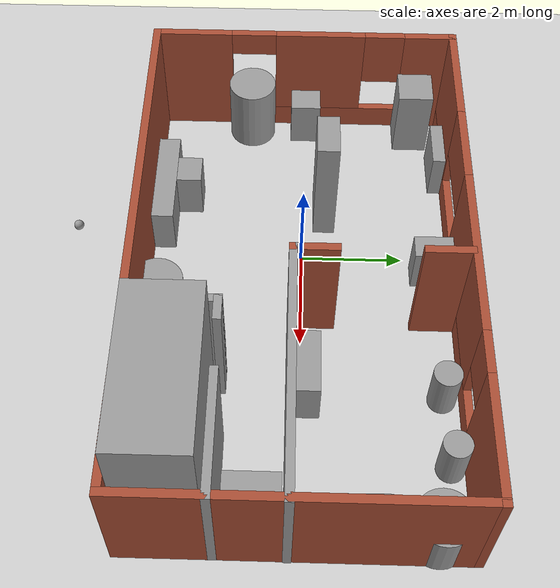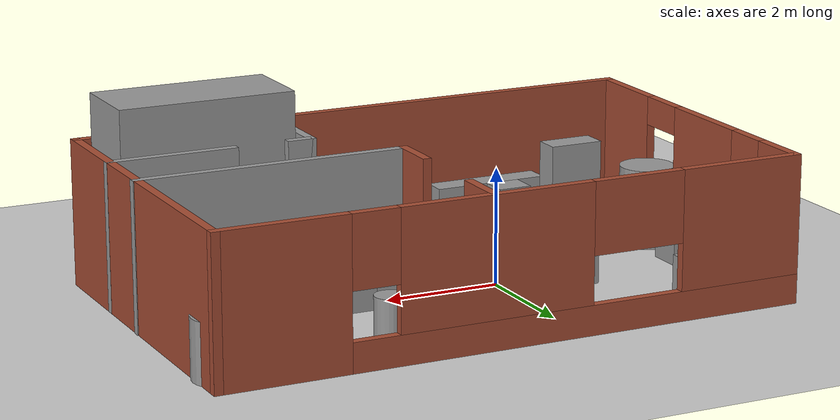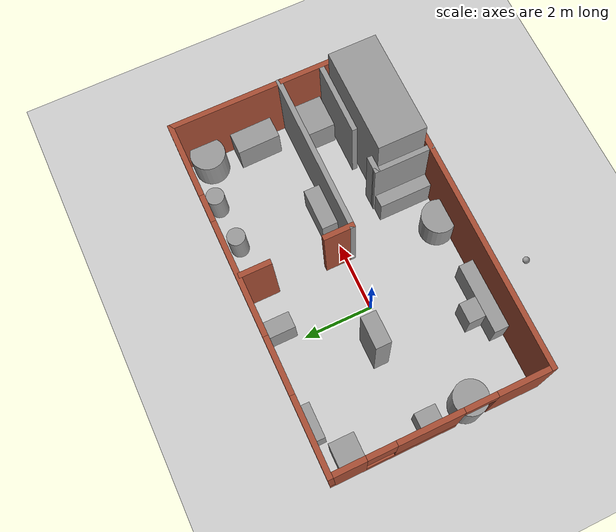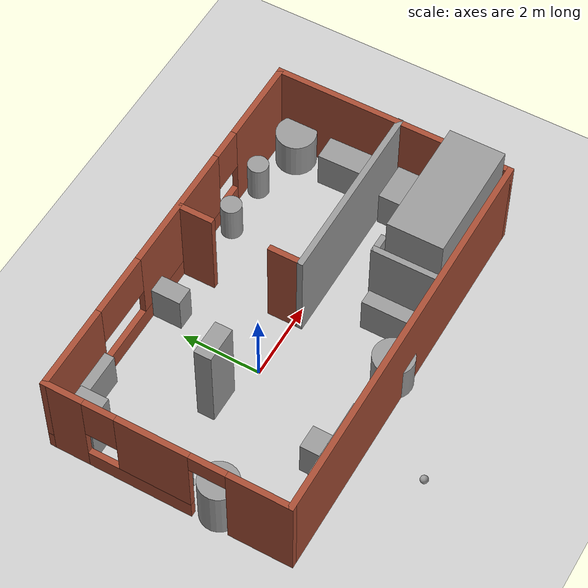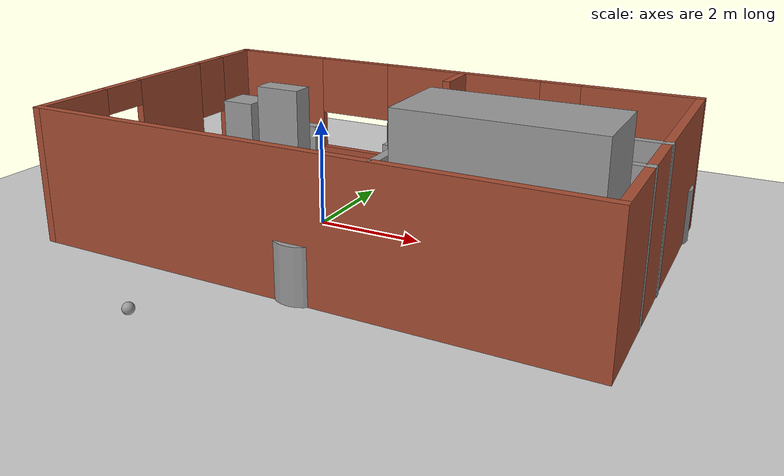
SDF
<sdf version="1.6">
 <world name="default">
  <plugin name="print_str" filename="libprint_str.so"/>
  <light name="sun" type="directional">
   <pose>0 0 10 0 -0 0</pose>
   <diffuse>0.8 0.8 0.8 1</diffuse>
   <specular>0.2 0.2 0.2 1</specular>
   <attenuation>
    <range>1000</range>
    <constant>0.9</constant>
    <linear>0.01</linear>
    <quadratic>0.001</quadratic>
   </attenuation>
   <direction>-0.5 0.1 -0.9</direction>
  </light>
  <model name="ground_plane">
   <static>1</static>
   <link name="link">
    <collision name="collision">
     <geometry><plane><normal>0 0 1</normal><size>100 100</size></plane></geometry>
     <surface><friction><ode><mu>100</mu><mu2>50</mu2></ode></friction></surface>
    </collision>
    <visual name="visual">
     <cast_shadows>0</cast_shadows>
     <geometry><plane><normal>0 0 1</normal><size>100 100</size></plane></geometry>
     <material>
      <script><uri>file://media/materials/scripts/gazebo.material</uri><name>Gazebo/Grey</name></script>
     </material>
    </visual>
   </link>
  </model>
  <gravity>0 0 -9.8</gravity>
  <magnetic_field>6e-06 2.3e-05 -4.2e-05</magnetic_field>
  <atmosphere type="adiabatic"/>
  <physics name="default_physics" default="0" type="ode">
   <max_step_size>0.001</max_step_size>
   <real_time_factor>1</real_time_factor>
   <real_time_update_rate>1000</real_time_update_rate>
  </physics>
  <scene><ambient>0.4 0.4 0.4 1</ambient><background>0.7 0.7 0.7 1</background><shadows>1</shadows></scene>
  <spherical_coordinates>
   <surface_model>EARTH_WGS84</surface_model>
   <latitude_deg>0</latitude_deg>
   <longitude_deg>0</longitude_deg>
   <elevation>0</elevation>
   <heading_deg>0</heading_deg>
  </spherical_coordinates>
  <model name="building">
   <pose>1.17532 -0.024414 0 0 -0 0</pose>
   <link name="Wall_1">
    <collision name="Wall_1_Collision">
     <geometry><box><size>10.15 0.15 2.5</size></box></geometry>
     <pose>0 0 1.25 0 -0 0</pose>
    </collision>
    <visual name="Wall_1_Visual">
     <pose>0 0 1.25 0 -0 0</pose>
     <geometry><box><size>10.15 0.15 2.5</size></box></geometry>
     <material>
      <script><uri>file://media/materials/scripts/gazebo.material</uri><name>Gazebo/Bricks</name></script>
      <ambient>0.760784 0.662745 0.627451 1</ambient>
     </material>
     <meta><layer>0</layer></meta>
    </visual>
    <pose>-0.006393 -3 0 0 -0 0</pose>
   </link>
   <link name="Wall_11">
    <collision name="Wall_11_Collision">
     <geometry><box><size>2.25 0.15 2.5</size></box></geometry>
     <pose>0 0 1.25 0 -0 0</pose>
    </collision>
    <visual name="Wall_11_Visual">
     <pose>0 0 1.25 0 -0 0</pose>
     <geometry><box><size>2.25 0.15 2.5</size></box></geometry>
     <material>
      <script><uri>file://media/materials/scripts/gazebo.material</uri><name>Gazebo/Grey</name></script>
      <ambient>1 1 1 1</ambient>
     </material>
     <meta><layer>0</layer></meta>
    </visual>
    <pose>3.94466 -1.38999 0 0 -0 3.14159</pose>
   </link>
   <link name="Wall_14">
    <collision name="Wall_14_Collision">
     <geometry><box><size>4.75 0.15 2.5</size></box></geometry>
     <pose>0 0 1.25 0 -0 0</pose>
    </collision>
    <visual name="Wall_14_Visual">
     <pose>0 0 1.25 0 -0 0</pose>
     <geometry><box><size>4.75 0.15 2.5</size></box></geometry>
     <material>
      <script><uri>file://media/materials/scripts/gazebo.material</uri><name>Gazebo/Grey</name></script>
      <ambient>1 1 1 1</ambient>
     </material>
     <meta><layer>0</layer></meta>
    </visual>
    <pose>2.70639 -0.159246 0 0 -0 3.14149</pose>
   </link>
   <link name="Wall_16">
    <collision name="Wall_16_Collision">
     <geometry><box><size>0.9 0.15 2.5</size></box></geometry>
     <pose>0 0 1.25 0 -0 0</pose>
    </collision>
    <visual name="Wall_16_Visual">
     <pose>0 0 1.25 0 -0 0</pose>
     <geometry><box><size>0.9 0.15 2.5</size></box></geometry>
     <material>
      <script><uri>file://media/materials/scripts/gazebo.material</uri><name>Gazebo/Bricks</name></script>
      <ambient>1 1 1 1</ambient>
     </material>
     <meta><layer>0</layer></meta>
    </visual>
    <pose>0.406607 0.216 0 0 -0 1.5708</pose>
   </link>
   <link name="Wall_2">
    <collision name="Wall_2_Collision">
     <geometry><box><size>6.15 0.15 2.5</size></box></geometry>
     <pose>0 0 1.25 0 -0 0</pose>
    </collision>
    <visual name="Wall_2_Visual">
     <pose>0 0 1.25 0 -0 0</pose>
     <geometry><box><size>6.15 0.15 2.5</size></box></geometry>
     <material>
      <script><uri>file://media/materials/scripts/gazebo.material</uri><name>Gazebo/Bricks</name></script>
      <ambient>1 1 1 1</ambient>
     </material>
     <meta><layer>0</layer></meta>
    </visual>
    <pose>4.99361 0 0 0 -0 1.5708</pose>
   </link>
   <link name="Wall_21">
    <collision name="Wall_21_Collision">
     <geometry><box><size>0.9 0.15 2.5</size></box></geometry>
     <pose>0 0 1.25 0 -0 0</pose>
    </collision>
    <visual name="Wall_21_Visual">
     <pose>0 0 1.25 0 -0 0</pose>
     <geometry><box><size>0.9 0.15 2.5</size></box></geometry>
     <material>
      <script><uri>file://media/materials/scripts/gazebo.material</uri><name>Gazebo/Bricks</name></script>
      <ambient>1 1 1 1</ambient>
     </material>
     <meta><layer>0</layer></meta>
    </visual>
    <pose>0.406607 2.548 0 0 0 -1.5708</pose>
   </link>
   <link name="Wall_3">
    <pose>-0.006393 3 0 0 -0 3.14159</pose>
    <visual name="Wall_3_Visual_0">
     <pose>-3.95578 0 1.25 0 -0 0</pose>
     <geometry><box><size>2.23845 0.15 2.5</size></box></geometry>
     <material>
      <script><uri>file://media/materials/scripts/gazebo.material</uri><name>Gazebo/Bricks</name></script>
      <ambient>0.760784 0.662745 0.627451 1</ambient>
     </material>
     <meta><layer>0</layer></meta>
    </visual>
    <collision name="Wall_3_Collision_0">
     <geometry><box><size>2.23845 0.15 2.5</size></box></geometry>
     <pose>-3.95578 0 1.25 0 -0 0</pose>
    </collision>
    <visual name="Wall_3_Visual_1">
     <pose>1.11922 0 0.25 0 -0 0</pose>
     <geometry><box><size>7.91155 0.15 0.5</size></box></geometry>
     <material>
      <script><uri>file://media/materials/scripts/gazebo.material</uri><name>Gazebo/Bricks</name></script>
      <ambient>0.760784 0.662745 0.627451 1</ambient>
     </material>
     <meta><layer>0</layer></meta>
    </visual>
    <collision name="Wall_3_Collision_1">
     <geometry><box><size>7.91155 0.15 0.5</size></box></geometry>
     <pose>1.11922 0 0.25 0 -0 0</pose>
    </collision>
    <visual name="Wall_3_Visual_2">
     <pose>-0.371055 0 1.5 0 -0 0</pose>
     <geometry><box><size>3.331 0.15 2</size></box></geometry>
     <material>
      <script><uri>file://media/materials/scripts/gazebo.material</uri><name>Gazebo/Bricks</name></script>
      <ambient>0.760784 0.662745 0.627451 1</ambient>
     </material>
     <meta><layer>0</layer></meta>
    </visual>
    <collision name="Wall_3_Collision_2">
     <geometry><box><size>3.331 0.15 2</size></box></geometry>
     <pose>-0.371055 0 1.5 0 -0 0</pose>
    </collision>
    <visual name="Wall_3_Visual_3">
     <pose>3.98472 0 1.5 0 -0 0</pose>
     <geometry><box><size>2.18056 0.15 2</size></box></geometry>
     <material>
      <script><uri>file://media/materials/scripts/gazebo.material</uri><name>Gazebo/Bricks</name></script>
      <ambient>0.760784 0.662745 0.627451 1</ambient>
     </material>
     <meta><layer>0</layer></meta>
    </visual>
    <collision name="Wall_3_Collision_3">
     <geometry><box><size>2.18056 0.15 2</size></box></geometry>
     <pose>3.98472 0 1.5 0 -0 0</pose>
    </collision>
    <visual name="Wall_3_Visual_4">
     <pose>-2.43655 0 1.9 0 -0 0</pose>
     <geometry><box><size>0.8 0.15 1.2</size></box></geometry>
     <material>
      <script><uri>file://media/materials/scripts/gazebo.material</uri><name>Gazebo/Bricks</name></script>
      <ambient>0.760784 0.662745 0.627451 1</ambient>
     </material>
     <meta><layer>0</layer></meta>
    </visual>
    <collision name="Wall_3_Collision_4">
     <geometry><box><size>0.8 0.15 1.2</size></box></geometry>
     <pose>-2.43655 0 1.9 0 -0 0</pose>
    </collision>
    <visual name="Wall_3_Visual_5">
     <pose>2.09444 0 1.9 0 -0 0</pose>
     <geometry><box><size>1.6 0.15 1.2</size></box></geometry>
     <material>
      <script><uri>file://media/materials/scripts/gazebo.material</uri><name>Gazebo/Bricks</name></script>
      <ambient>0.760784 0.662745 0.627451 1</ambient>
     </material>
     <meta><layer>0</layer></meta>
    </visual>
    <collision name="Wall_3_Collision_5">
     <geometry><box><size>1.6 0.15 1.2</size></box></geometry>
     <pose>2.09444 0 1.9 0 -0 0</pose>
    </collision>
   </link>
   <link name="Wall_4">
    <pose>-5.00639 0 0 0 0 -1.5708</pose>
    <visual name="Wall_4_Visual_0">
     <pose>-2.55475 0 1.25 0 -0 0</pose>
     <geometry><box><size>1.04049 0.15 2.5</size></box></geometry>
     <material>
      <script><uri>file://media/materials/scripts/gazebo.material</uri><name>Gazebo/Bricks</name></script>
      <ambient>1 1 1 1</ambient>
     </material>
     <meta><layer>0</layer></meta>
    </visual>
    <collision name="Wall_4_Collision_0">
     <geometry><box><size>1.04049 0.15 2.5</size></box></geometry>
     <pose>-2.55475 0 1.25 0 -0 0</pose>
    </collision>
    <visual name="Wall_4_Visual_1">
     <pose>2.2735 0 1.25 0 -0 0</pose>
     <geometry><box><size>1.60301 0.15 2.5</size></box></geometry>
     <material>
      <script><uri>file://media/materials/scripts/gazebo.material</uri><name>Gazebo/Bricks</name></script>
      <ambient>1 1 1 1</ambient>
     </material>
     <meta><layer>0</layer></meta>
    </visual>
    <collision name="Wall_4_Collision_1">
     <geometry><box><size>1.60301 0.15 2.5</size></box></geometry>
     <pose>2.2735 0 1.25 0 -0 0</pose>
    </collision>
    <visual name="Wall_4_Visual_2">
     <pose>-0.731257 0 0.25 0 -0 0</pose>
     <geometry><box><size>2.6065 0.15 0.5</size></box></geometry>
     <material>
      <script><uri>file://media/materials/scripts/gazebo.material</uri><name>Gazebo/Bricks</name></script>
      <ambient>1 1 1 1</ambient>
     </material>
     <meta><layer>0</layer></meta>
    </visual>
    <collision name="Wall_4_Collision_2">
     <geometry><box><size>2.6065 0.15 0.5</size></box></geometry>
     <pose>-0.731257 0 0.25 0 -0 0</pose>
    </collision>
    <visual name="Wall_4_Visual_3">
     <pose>-0.331257 0 1.5 0 -0 0</pose>
     <geometry><box><size>1.8065 0.15 2</size></box></geometry>
     <material>
      <script><uri>file://media/materials/scripts/gazebo.material</uri><name>Gazebo/Bricks</name></script>
      <ambient>1 1 1 1</ambient>
     </material>
     <meta><layer>0</layer></meta>
    </visual>
    <collision name="Wall_4_Collision_3">
     <geometry><box><size>1.8065 0.15 2</size></box></geometry>
     <pose>-0.331257 0 1.5 0 -0 0</pose>
    </collision>
    <visual name="Wall_4_Visual_4">
     <pose>-1.63451 0 1.9 0 -0 0</pose>
     <geometry><box><size>0.8 0.15 1.2</size></box></geometry>
     <material>
      <script><uri>file://media/materials/scripts/gazebo.material</uri><name>Gazebo/Bricks</name></script>
      <ambient>1 1 1 1</ambient>
     </material>
     <meta><layer>0</layer></meta>
    </visual>
    <collision name="Wall_4_Collision_4">
     <geometry><box><size>0.8 0.15 1.2</size></box></geometry>
     <pose>-1.63451 0 1.9 0 -0 0</pose>
    </collision>
    <visual name="Wall_4_Visual_5">
     <pose>1.02199 0 2.25 0 -0 0</pose>
     <geometry><box><size>0.9 0.15 0.5</size></box></geometry>
     <material>
      <script><uri>file://media/materials/scripts/gazebo.material</uri><name>Gazebo/Bricks</name></script>
      <ambient>1 1 1 1</ambient>
     </material>
     <meta><layer>0</layer></meta>
    </visual>
    <collision name="Wall_4_Collision_5">
     <geometry><box><size>0.9 0.15 0.5</size></box></geometry>
     <pose>1.02199 0 2.25 0 -0 0</pose>
    </collision>
   </link>
   <link name="Wall_6">
    <collision name="Wall_6_Collision">
     <geometry><box><size>1.75 0.15 2.5</size></box></geometry>
     <pose>0 0 1.25 0 -0 0</pose>
    </collision>
    <visual name="Wall_6_Visual">
     <pose>0 0 1.25 0 -0 0</pose>
     <geometry><box><size>1.75 0.15 2.5</size></box></geometry>
     <material>
      <script><uri>file://media/materials/scripts/gazebo.material</uri><name>Gazebo/Grey</name></script>
      <ambient>1 1 1 1</ambient>
     </material>
     <meta><layer>0</layer></meta>
    </visual>
    <pose>1.52166 -2.19999 0 0 -0 1.5708</pose>
   </link>
   <link name="Wall_7">
    <collision name="Wall_7_Collision">
     <geometry><box><size>0.5 0.15 2.5</size></box></geometry>
     <pose>0 0 1.25 0 -0 0</pose>
    </collision>
    <visual name="Wall_7_Visual">
     <pose>0 0 1.25 0 -0 0</pose>
     <geometry><box><size>0.5 0.15 2.5</size></box></geometry>
     <material>
      <script><uri>file://media/materials/scripts/gazebo.material</uri><name>Gazebo/Grey</name></script>
      <ambient>1 1 1 1</ambient>
     </material>
     <meta><layer>0</layer></meta>
    </visual>
    <pose>1.69666 -1.39999 0 0 -0 0</pose>
   </link>
   <static>1</static>
  </model>
  <model name="my_ball">
   <link name="link">
    <inertial>
     <mass>1</mass>
     <inertia><ixx>0.1</ixx><ixy>0</ixy><ixz>0</ixz><iyy>0.1</iyy><iyz>0</iyz><izz>0.1</izz></inertia>
    </inertial>
    <visual name="visual">
     <geometry><sphere><radius>0.1</radius></sphere></geometry>
     <material>
      <script><name>Gazebo/Grey</name><uri>file://media/materials/scripts/gazebo.material</uri></script>
      <shader type="pixel"><normal_map>__default__</normal_map></shader>
      <ambient>1 1 1 1</ambient>
      <diffuse>1 1 1 1</diffuse>
      <specular>1 1 1 1</specular>
      <emissive>1 1 1 1</emissive>
     </material>
    </visual>
    <collision name="collision">
     <geometry><sphere><radius>0.1</radius></sphere></geometry>
     <surface>
      <friction>
       <ode><mu>1</mu><mu2>1</mu2><fdir1>0 0 0</fdir1><slip1>0</slip1><slip2>0</slip2></ode>
       <torsional>
        <coefficient>1</coefficient>
        <patch_radius>0</patch_radius>
        <surface_radius>0</surface_radius>
        <use_patch_radius>1</use_patch_radius>
        <ode><slip>0</slip></ode>
       </torsional>
      </friction>
      <bounce><restitution_coefficient>0</restitution_coefficient><threshold>1e+06</threshold></bounce>
      <contact>
       <collide_without_contact>0</collide_without_contact>
       <collide_without_contact_bitmask>1</collide_without_contact_bitmask>
       <collide_bitmask>1</collide_bitmask>
       <ode>
        <soft_cfm>0</soft_cfm>
        <soft_erp>0.2</soft_erp>
        <kp>1e+13</kp>
        <kd>1</kd>
        <max_vel>0.01</max_vel>
        <min_depth>0</min_depth>
       </ode>
       <bullet>
        <split_impulse>1</split_impulse>
        <split_impulse_penetration_threshold>-0.01</split_impulse_penetration_threshold>
        <soft_cfm>0</soft_cfm>
        <soft_erp>0.2</soft_erp>
        <kp>1e+13</kp>
        <kd>1</kd>
       </bullet>
      </contact>
     </surface>
    </collision>
   </link>
   <static>0</static>
   <pose>-0.655059 -4.54452 0.1 0 -0 0</pose>
  </model>
  <model name="unit_box">
   <pose>2.41602 -2.15313 0.5 0 -2e-06 -0.001058</pose>
   <link name="link">
    <inertial>
     <mass>1</mass>
     <inertia>
      <ixx>0.166667</ixx>
      <ixy>0</ixy>
      <ixz>0</ixz>
      <iyy>0.166667</iyy>
      <iyz>0</iyz>
      <izz>0.166667</izz>
     </inertia>
    </inertial>
    <collision name="collision"><geometry><box><size>0.371253 1.53389 1</size></box></geometry></collision>
    <visual name="visual">
     <geometry><box><size>0.371253 1.53389 1</size></box></geometry>
     <material>
      <script><name>Gazebo/Grey</name><uri>file://media/materials/scripts/gazebo.material</uri></script>
     </material>
    </visual>
   </link>
  </model>
  <model name="unit_box_0">
   <pose>-1.23173 -2.73585 0.499984 0 1.6e-05 0.000335</pose>
   <link name="link">
    <inertial>
     <mass>1</mass>
     <inertia>
      <ixx>0.166667</ixx>
      <ixy>0</ixy>
      <ixz>0</ixz>
      <iyy>0.166667</iyy>
      <iyz>0</iyz>
      <izz>0.166667</izz>
     </inertia>
    </inertial>
    <collision name="collision"><geometry><box><size>2.04166 0.425192 1</size></box></geometry></collision>
    <visual name="visual">
     <geometry><box><size>2.04166 0.425192 1</size></box></geometry>
     <material>
      <script><name>Gazebo/Grey</name><uri>file://media/materials/scripts/gazebo.material</uri></script>
     </material>
    </visual>
   </link>
  </model>
  <model name="unit_box_1">
   <pose>5.75728 0.903545 0.5 0 -0 0.016683</pose>
   <link name="link">
    <inertial>
     <mass>1</mass>
     <inertia>
      <ixx>0.166667</ixx>
      <ixy>0</ixy>
      <ixz>0</ixz>
      <iyy>0.166667</iyy>
      <iyz>0</iyz>
      <izz>0.166667</izz>
     </inertia>
    </inertial>
    <collision name="collision"><geometry><box><size>0.638028 1.24688 1</size></box></geometry></collision>
    <visual name="visual">
     <geometry><box><size>0.638028 1.24688 1</size></box></geometry>
     <material>
      <script><name>Gazebo/Grey</name><uri>file://media/materials/scripts/gazebo.material</uri></script>
     </material>
    </visual>
   </link>
  </model>
  <model name="unit_box_2">
   <pose>-1.12907 0.451147 1.21781 0 2e-06 -0.000343</pose>
   <link name="link">
    <inertial>
     <mass>1</mass>
     <inertia>
      <ixx>0.166667</ixx>
      <ixy>0</ixy>
      <ixz>0</ixz>
      <iyy>0.166667</iyy>
      <iyz>0</iyz>
      <izz>0.166667</izz>
     </inertia>
    </inertial>
    <collision name="collision"><geometry><box><size>0.897881 0.432683 2.43563</size></box></geometry></collision>
    <visual name="visual">
     <geometry><box><size>0.897881 0.432683 2.43563</size></box></geometry>
     <material>
      <script><name>Gazebo/Grey</name><uri>file://media/materials/scripts/gazebo.material</uri></script>
     </material>
    </visual>
   </link>
  </model>
  <model name="unit_box_3">
   <pose>-3.39091 2.31561 0.76043 0 0 -2e-06</pose>
   <link name="link">
    <inertial>
     <mass>1</mass>
     <inertia>
      <ixx>0.166667</ixx>
      <ixy>0</ixy>
      <ixz>0</ixz>
      <iyy>0.166667</iyy>
      <iyz>0</iyz>
      <izz>0.166667</izz>
     </inertia>
    </inertial>
    <collision name="collision"><geometry><box><size>0.730297 0.703305 1.52086</size></box></geometry></collision>
    <visual name="visual">
     <geometry><box><size>0.730297 0.703305 1.52086</size></box></geometry>
     <material>
      <script><name>Gazebo/Grey</name><uri>file://media/materials/scripts/gazebo.material</uri></script>
     </material>
    </visual>
   </link>
  </model>
  <model name="unit_box_4">
   <pose>2.95912 0.123499 0.5 -8e-06 -2e-06 -0.000101</pose>
   <link name="link">
    <inertial>
     <mass>1</mass>
     <inertia>
      <ixx>0.166667</ixx>
      <ixy>0</ixy>
      <ixz>0</ixz>
      <iyy>0.166667</iyy>
      <iyz>0</iyz>
      <izz>0.166667</izz>
     </inertia>
    </inertial>
    <collision name="collision"><geometry><box><size>1.23798 0.464111 1</size></box></geometry></collision>
    <visual name="visual">
     <geometry><box><size>1.23798 0.464111 1</size></box></geometry>
     <material>
      <script><name>Gazebo/Grey</name><uri>file://media/materials/scripts/gazebo.material</uri></script>
     </material>
    </visual>
   </link>
  </model>
  <model name="unit_cylinder">
   <pose>5.79962 2.33053 0.499998 3e-06 -4e-06 0</pose>
   <link name="link">
    <inertial>
     <mass>1</mass>
     <inertia><ixx>0.145833</ixx><ixy>0</ixy><ixz>0</ixz><iyy>0.145833</iyy><iyz>0</iyz><izz>0.125</izz></inertia>
    </inertial>
    <collision name="collision">
     <geometry><cylinder><radius>0.5</radius><length>1</length></cylinder></geometry>
    </collision>
    <visual name="visual">
     <geometry><cylinder><radius>0.5</radius><length>1</length></cylinder></geometry>
     <material>
      <script><name>Gazebo/Grey</name><uri>file://media/materials/scripts/gazebo.material</uri></script>
     </material>
    </visual>
   </link>
  </model>
  <model name="unit_cylinder_1">
   <pose>-3.52029 -1.07908 0.697822 1e-06 -0 0.129826</pose>
   <link name="link">
    <inertial>
     <mass>1</mass>
     <inertia><ixx>0.145833</ixx><ixy>0</ixy><ixz>0</ixz><iyy>0.145833</iyy><iyz>0</iyz><izz>0.125</izz></inertia>
    </inertial>
    <collision name="collision">
     <geometry><cylinder><radius>0.47932</radius><length>1.39566</length></cylinder></geometry>
    </collision>
    <visual name="visual">
     <geometry><cylinder><radius>0.47932</radius><length>1.39566</length></cylinder></geometry>
     <material>
      <script><name>Gazebo/Grey</name><uri>file://media/materials/scripts/gazebo.material</uri></script>
     </material>
    </visual>
   </link>
  </model>
  <model name="unit_box_5">
   <pose>-3.49026 0.057216 0.5 0 0 -4e-06</pose>
   <link name="link">
    <inertial>
     <mass>1</mass>
     <inertia>
      <ixx>0.166667</ixx>
      <ixy>0</ixy>
      <ixz>0</ixz>
      <iyy>0.166667</iyy>
      <iyz>0</iyz>
      <izz>0.166667</izz>
     </inertia>
    </inertial>
    <collision name="collision"><geometry><box><size>0.531612 0.610473 1</size></box></geometry></collision>
    <visual name="visual">
     <geometry><box><size>0.531612 0.610473 1</size></box></geometry>
     <material>
      <script><name>Gazebo/Grey</name><uri>file://media/materials/scripts/gazebo.material</uri></script>
     </material>
    </visual>
   </link>
  </model>
  <model name="unit_box_6">
   <pose>-1.44674 -2.27912 0.499998 -3e-06 4e-06 -0.001003</pose>
   <link name="link">
    <inertial>
     <mass>1</mass>
     <inertia>
      <ixx>0.166667</ixx>
      <ixy>0</ixy>
      <ixz>0</ixz>
      <iyy>0.166667</iyy>
      <iyz>0</iyz>
      <izz>0.166667</izz>
     </inertia>
    </inertial>
    <collision name="collision"><geometry><box><size>0.597978 0.487614 1</size></box></geometry></collision>
    <visual name="visual">
     <geometry><box><size>0.597978 0.487614 1</size></box></geometry>
     <material>
      <script><name>Gazebo/Grey</name><uri>file://media/materials/scripts/gazebo.material</uri></script>
     </material>
    </visual>
   </link>
  </model>
  <model name="unit_box_7">
   <pose>4.41868 -2.25393 1.63817 -1.5708 -1e-06 0.001277</pose>
   <link name="link">
    <inertial>
     <mass>1</mass>
     <inertia>
      <ixx>0.166667</ixx>
      <ixy>0</ixy>
      <ixz>0</ixz>
      <iyy>0.166667</iyy>
      <iyz>0</iyz>
      <izz>0.166667</izz>
     </inertia>
    </inertial>
    <collision name="collision"><geometry><box><size>3.03345 3.27636 1.38449</size></box></geometry></collision>
    <visual name="visual">
     <geometry><box><size>3.03345 3.27636 1.38449</size></box></geometry>
     <material>
      <script><name>Gazebo/Grey</name><uri>file://media/materials/scripts/gazebo.material</uri></script>
     </material>
    </visual>
   </link>
  </model>
  <model name="unit_cylinder_2">
   <pose>1.30718 -2.70639 0.499994 -4e-06 -3e-06 -0</pose>
   <link name="link">
    <inertial>
     <mass>1</mass>
     <inertia><ixx>0.145833</ixx><ixy>0</ixy><ixz>0</ixz><iyy>0.145833</iyy><iyz>0</iyz><izz>0.125</izz></inertia>
    </inertial>
    <collision name="collision">
     <geometry><cylinder><radius>0.5</radius><length>1</length></cylinder></geometry>
    </collision>
    <visual name="visual">
     <geometry><cylinder><radius>0.5</radius><length>1</length></cylinder></geometry>
     <material>
      <script><name>Gazebo/Grey</name><uri>file://media/materials/scripts/gazebo.material</uri></script>
     </material>
    </visual>
   </link>
  </model>
  <model name="unit_cylinder_3">
   <pose>4.51049 2.63919 0.499991 0 -0 4e-06</pose>
   <link name="link">
    <inertial>
     <mass>1</mass>
     <inertia><ixx>0.145833</ixx><ixy>0</ixy><ixz>0</ixz><iyy>0.145833</iyy><iyz>0</iyz><izz>0.125</izz></inertia>
    </inertial>
    <collision name="collision">
     <geometry><cylinder><radius>0.261389</radius><length>1</length></cylinder></geometry>
    </collision>
    <visual name="visual">
     <geometry><cylinder><radius>0.261389</radius><length>1</length></cylinder></geometry>
     <material>
      <script><name>Gazebo/Grey</name><uri>file://media/materials/scripts/gazebo.material</uri></script>
     </material>
    </visual>
   </link>
  </model>
  <model name="unit_cylinder_4">
   <pose>3.15843 2.57987 0.499998 -1e-06 1e-06 -6e-06</pose>
   <link name="link">
    <inertial>
     <mass>1</mass>
     <inertia><ixx>0.145833</ixx><ixy>0</ixy><ixz>0</ixz><iyy>0.145833</iyy><iyz>0</iyz><izz>0.125</izz></inertia>
    </inertial>
    <collision name="collision">
     <geometry><cylinder><radius>0.261344</radius><length>1</length></cylinder></geometry>
    </collision>
    <visual name="visual">
     <geometry><cylinder><radius>0.261344</radius><length>1</length></cylinder></geometry>
     <material>
      <script><name>Gazebo/Grey</name><uri>file://media/materials/scripts/gazebo.material</uri></script>
     </material>
    </visual>
   </link>
  </model>
  <model name="unit_box_8">
   <pose>0.383466 2.52606 0.5 -1.5708 -0 2e-05</pose>
   <link name="link">
    <inertial>
     <mass>1</mass>
     <inertia>
      <ixx>0.166667</ixx>
      <ixy>0</ixy>
      <ixz>0</ixz>
      <iyy>0.166667</iyy>
      <iyz>0</iyz>
      <izz>0.166667</izz>
     </inertia>
    </inertial>
    <collision name="collision"><geometry><box><size>0.466662 1 0.749039</size></box></geometry></collision>
    <visual name="visual">
     <geometry><box><size>0.466662 1 0.749039</size></box></geometry>
     <material>
      <script><name>Gazebo/Grey</name><uri>file://media/materials/scripts/gazebo.material</uri></script>
     </material>
    </visual>
   </link>
  </model>
  <model name="unit_box_9">
   <pose>-2.29585 2.77385 0.5 0 0 -9e-06</pose>
   <link name="link">
    <inertial>
     <mass>1</mass>
     <inertia>
      <ixx>0.166667</ixx>
      <ixy>0</ixy>
      <ixz>0</ixz>
      <iyy>0.166667</iyy>
      <iyz>0</iyz>
      <izz>0.166667</izz>
     </inertia>
    </inertial>
    <collision name="collision"><geometry><box><size>1 0.253483 1</size></box></geometry></collision>
    <visual name="visual">
     <geometry><box><size>1 0.253483 1</size></box></geometry>
     <material>
      <script><name>Gazebo/Grey</name><uri>file://media/materials/scripts/gazebo.material</uri></script>
     </material>
    </visual>
   </link>
  </model>
  <model name="unit_box_10">
   <pose>5.59392 -0.791023 0.499995 0 -1e-05 0</pose>
   <link name="link">
    <inertial>
     <mass>1</mass>
     <inertia>
      <ixx>0.166667</ixx>
      <ixy>0</ixy>
      <ixz>0</ixz>
      <iyy>0.166667</iyy>
      <iyz>0</iyz>
      <izz>0.166667</izz>
     </inertia>
    </inertial>
    <collision name="collision"><geometry><box><size>1 1 1</size></box></geometry></collision>
    <visual name="visual">
     <geometry><box><size>1 1 1</size></box></geometry>
     <material>
      <script><name>Gazebo/Grey</name><uri>file://media/materials/scripts/gazebo.material</uri></script>
     </material>
    </visual>
   </link>
  </model>
 </world>
</sdf>
